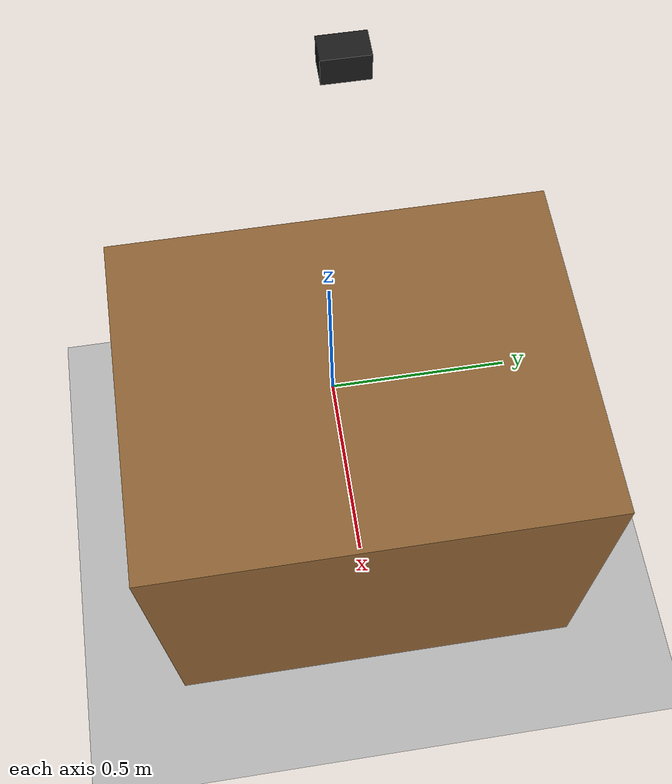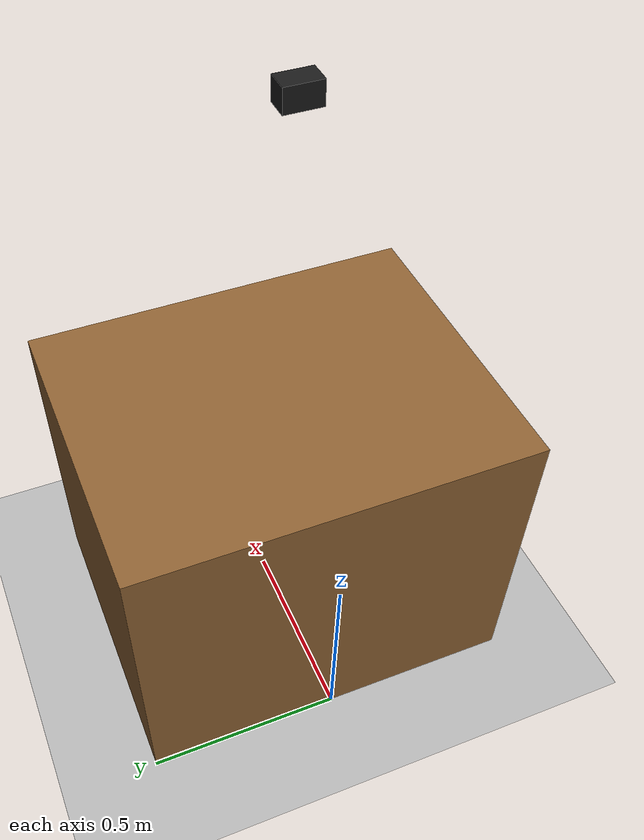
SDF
<?xml version="1.0" ?>
<sdf version="1.6">
  <world name="default">
    <physics name="default_physics" default="true" type="ode">
      <max_step_size>0.001</max_step_size>
      <real_time_factor>1.0</real_time_factor>
      <real_time_update_rate>1000</real_time_update_rate>
      <ode>
        <solver><type>quick</type><iters>100</iters><sor>1.3</sor></solver>
        <constraints>
          <cfm>0.0</cfm><erp>0.2</erp>
          <contact_max_correcting_vel>0.1</contact_max_correcting_vel>
          <contact_surface_layer>0.001</contact_surface_layer>
        </constraints>
      </ode>
    </physics>

    <scene>
      <ambient>0.6 0.6 0.6 1</ambient>
      <background>0.75 0.8 0.85 1</background>
      <shadows>false</shadows>
    </scene>

    <!-- Ánh sáng (không tải qua mạng) -->
    <light type="directional" name="sun">
      <cast_shadows>false</cast_shadows>
      <pose>0 0 10 0 0 0</pose>
      <diffuse>0.8 0.8 0.8 1</diffuse>
      <specular>0.2 0.2 0.2 1</specular>
      <attenuation>
        <range>1000</range>
        <constant>0.9</constant>
        <linear>0.01</linear>
        <quadratic>0.001</quadratic>
      </attenuation>
      <direction>-0.3 0.1 -0.9</direction>
    </light>

    <!-- Mặt đất -->
    <model name="ground_plane">
      <static>true</static>
      <link name="link">
        <collision name="collision">
          <geometry><plane><normal>0 0 1</normal><size>100 100</size></plane></geometry>
        </collision>
        <visual name="visual">
          <geometry><plane><normal>0 0 1</normal><size>100 100</size></plane></geometry>
          <material>
            <ambient>0.7 0.7 0.7 1</ambient>
            <diffuse>0.7 0.7 0.7 1</diffuse>
          </material>
        </visual>
      </link>
    </model>

    <!-- Bàn thao tác: mặt bàn ở z = 0.8, x in [0, 0.8], y in [-0.5, 0.5] -->
    <model name="table">
      <static>true</static>
      <pose>0.4 0 0.4 0 0 0</pose>
      <link name="link">
        <visual name="visual">
          <geometry><box><size>0.8 1.0 0.8</size></box></geometry>
          <material><ambient>0.55 0.38 0.2 1</ambient><diffuse>0.55 0.38 0.2 1</diffuse></material>
        </visual>
        <collision name="collision">
          <geometry><box><size>0.8 1.0 0.8</size></box></geometry>
          <surface>
            <friction><ode><mu>1.0</mu><mu2>1.0</mu2></ode></friction>
            <contact><ode><kp>1e6</kp><kd>100</kd><max_vel>0.01</max_vel><min_depth>0.001</min_depth></ode></contact>
          </surface>
        </collision>
      </link>
    </model>

    <!-- Camera RGB overhead, nhìn thẳng xuống bàn (pitch = +90 deg).
         Pose phải khớp với config/scene.yaml -> camera.position -->
    <model name="overhead_camera">
      <static>true</static>
      <pose>0.30 0 1.60 0 1.5708 0</pose>
      <link name="link">
        <visual name="visual">
          <geometry><box><size>0.05 0.08 0.05</size></box></geometry>
          <material><ambient>0.1 0.1 0.1 1</ambient></material>
        </visual>
        <sensor name="overhead_rgb" type="camera">
          <always_on>true</always_on>
          <update_rate>10.0</update_rate>
          <visualize>false</visualize>
          <camera>
            <horizontal_fov>1.047</horizontal_fov>
            <image><width>800</width><height>800</height><format>R8G8B8</format></image>
            <clip><near>0.05</near><far>5.0</far></clip>
          </camera>
          <plugin name="camera_controller" filename="libgazebo_ros_camera.so">
            <camera_name>camera</camera_name>
            <frame_name>camera_optical_frame</frame_name>
          </plugin>
        </sensor>
      </link>
    </model>
  </world>
</sdf>
